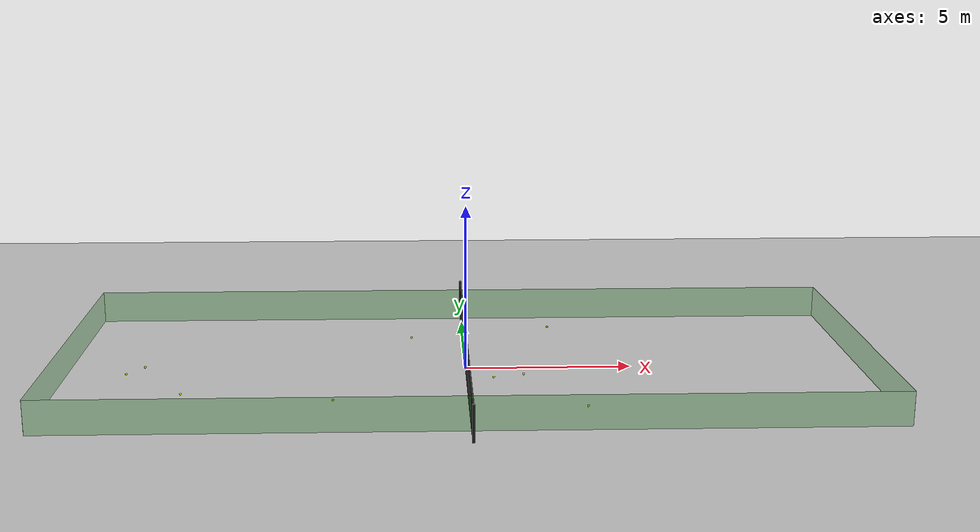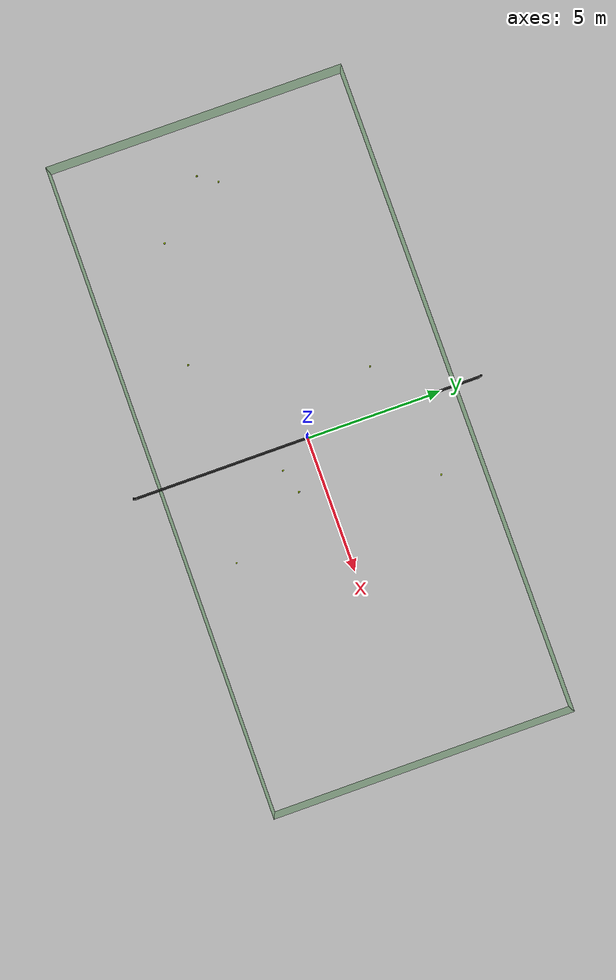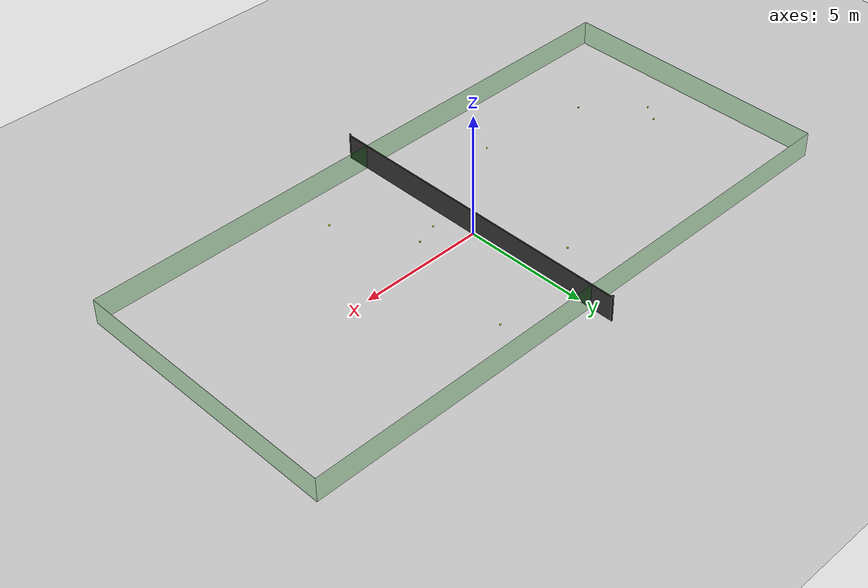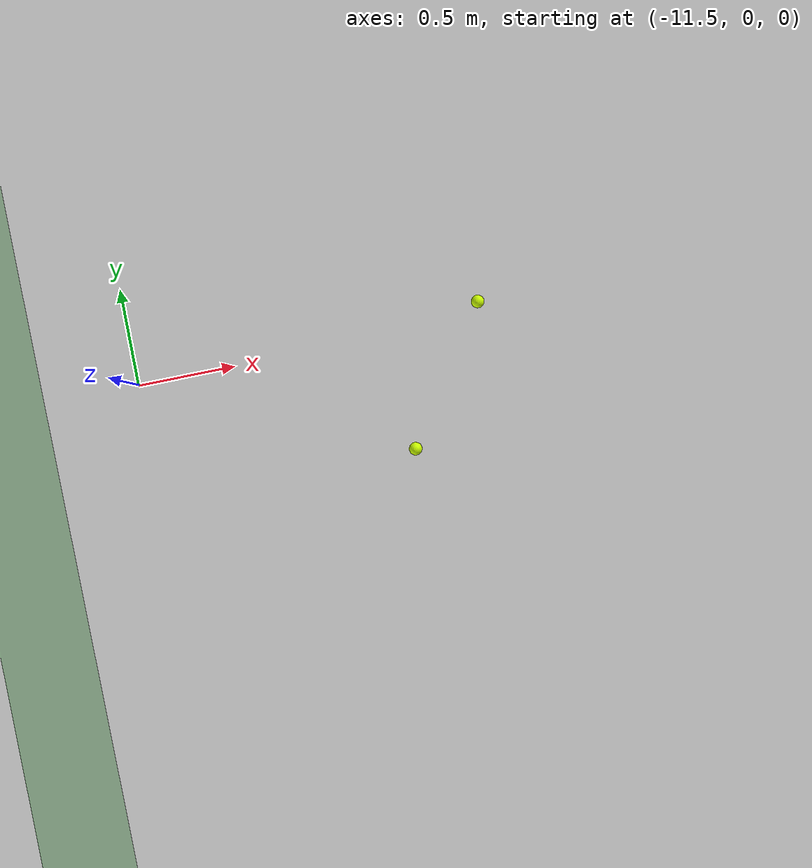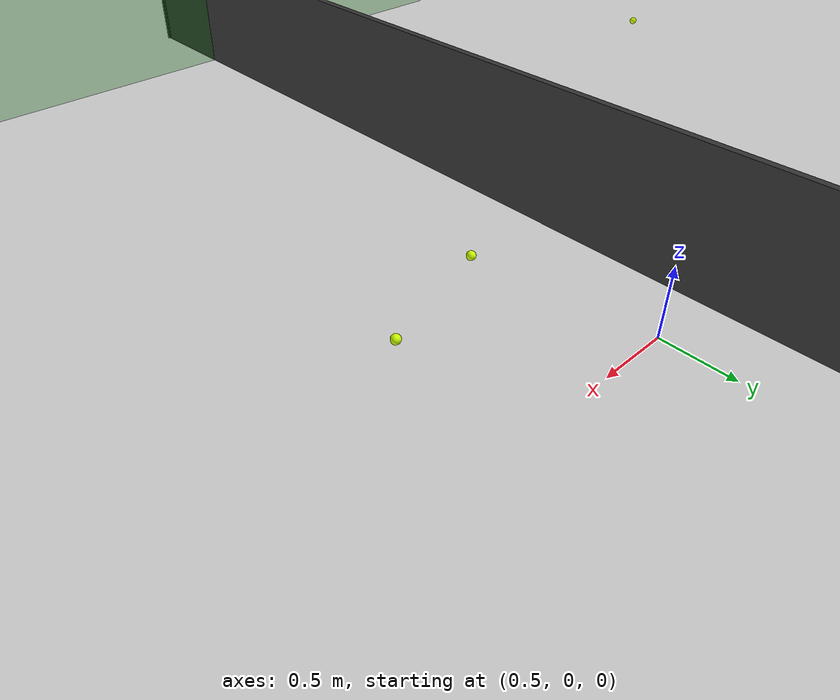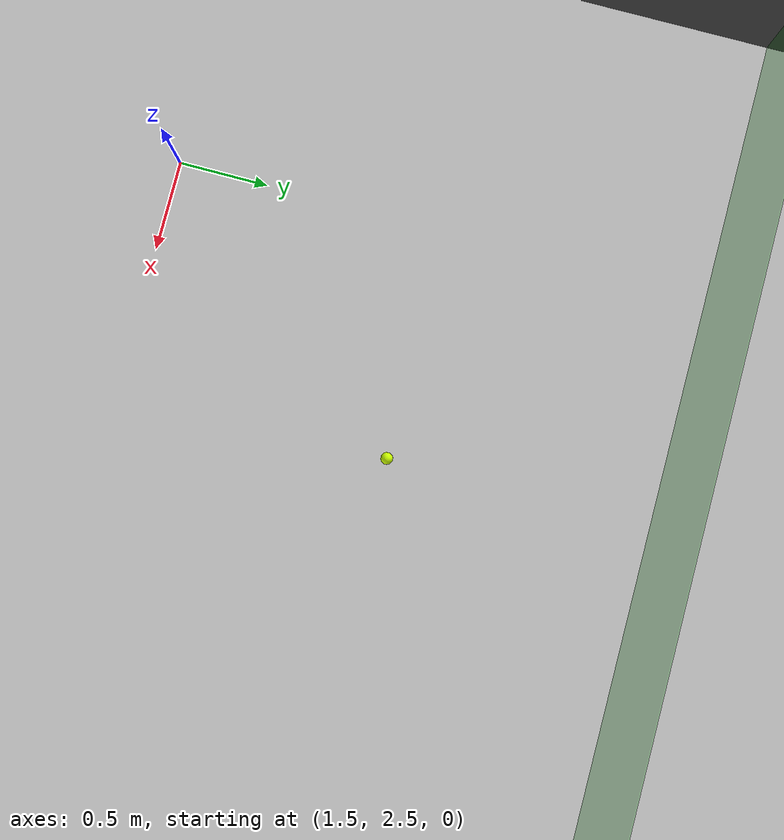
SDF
<?xml version="1.0" ?>
<sdf version="1.6">
  <world name="tennis_court_world">

    <include><uri>model://sun</uri></include>
    <include><uri>model://ground_plane</uri></include>

    <!-- gazebo_ros_state: 提供 /get_entity_state, /set_entity_state 服務，
         撿球實驗腳本用它讀網球位置、判斷有沒有進籃，以及每次 trial 重置球的位置 -->
    <plugin name="gazebo_ros_state" filename="libgazebo_ros_state.so">
      <ros>
        <namespace>/</namespace>
      </ros>
      <update_rate>10.0</update_rate>
    </plugin>

    <model name="court_walls">
      <static>true</static>
      <!-- 開放式網球場：牆只留半透明視覺當邊界參考，沒有碰撞 (真實場地沒有牆) -->
      <link name="walls_link">
        <visual name="front_v"><pose>12 0 0.5 0 0 0</pose><geometry><box><size>0.005 11 1</size></box></geometry><material><ambient>0 0.5 0 0.3</ambient><diffuse>0 0.5 0 0.3</diffuse></material></visual>
        <visual name="back_v"><pose>-12 0 0.5 0 0 0</pose><geometry><box><size>0.005 11 1</size></box></geometry><material><ambient>0 0.5 0 0.3</ambient><diffuse>0 0.5 0 0.3</diffuse></material></visual>
        <visual name="left_v"><pose>0 5.5 0.5 0 0 0</pose><geometry><box><size>24 0.005 1</size></box></geometry><material><ambient>0 0.5 0 0.3</ambient><diffuse>0 0.5 0 0.3</diffuse></material></visual>
        <visual name="right_v"><pose>0 -5.5 0.5 0 0 0</pose><geometry><box><size>24 0.005 1</size></box></geometry><material><ambient>0 0.5 0 0.3</ambient><diffuse>0 0.5 0 0.3</diffuse></material></visual>
      </link>
    </model>

    <!-- 網球網：ITF 規格中央高 0.914 m、網柱高 1.07 m，網柱在雙打邊線外 0.914 m
         (雙打寬 10.97 m -> 網柱在 y=±6.4 m，全長 12.8 m)。深灰色 (視覺不會當成球)，
         有碰撞；1 m 高的實心板會擋住相機看到另一個半場的球，對應現實 YOLO 隔著網子
         辨識不可靠的情況。 -->
    <model name="tennis_net">
      <static>true</static>
      <link name="net_link">
        <collision name="net_c"><pose>0 0 0.5 0 0 0</pose><geometry><box><size>0.05 12.8 1.0</size></box></geometry></collision>
        <visual name="net_v"><pose>0 0 0.5 0 0 0</pose><geometry><box><size>0.05 12.8 1.0</size></box></geometry><material><ambient>0.15 0.15 0.15 1</ambient><diffuse>0.2 0.2 0.2 1</diffuse></material></visual>
        <collision name="post_l_c"><pose>0 6.4 0.535 0 0 0</pose><geometry><cylinder><radius>0.04</radius><length>1.07</length></cylinder></geometry></collision>
        <visual name="post_l_v"><pose>0 6.4 0.535 0 0 0</pose><geometry><cylinder><radius>0.04</radius><length>1.07</length></cylinder></geometry><material><ambient>0.1 0.1 0.1 1</ambient><diffuse>0.1 0.1 0.1 1</diffuse></material></visual>
        <collision name="post_r_c"><pose>0 -6.4 0.535 0 0 0</pose><geometry><cylinder><radius>0.04</radius><length>1.07</length></cylinder></geometry></collision>
        <visual name="post_r_v"><pose>0 -6.4 0.535 0 0 0</pose><geometry><cylinder><radius>0.04</radius><length>1.07</length></cylinder></geometry><material><ambient>0.1 0.1 0.1 1</ambient><diffuse>0.1 0.1 0.1 1</diffuse></material></visual>
      </link>
    </model>

    <model name="ball_1">
      <pose>-3.876 -3.142 0.1 0 0 0</pose>
      <link name="link">
        <inertial>
          <mass>0.027</mass>
          <inertia><ixx>1.7642e-05</ixx><iyy>1.7642e-05</iyy><izz>1.7642e-05</izz></inertia>
        </inertial>
        <velocity_decay><linear>0</linear><angular>0.00107</angular></velocity_decay>
        <collision name="collision">
          <geometry><sphere><radius>0.033</radius></sphere></geometry>
          <surface>
            <friction><ode><mu>1.0</mu><mu2>1.0</mu2></ode></friction>
            <bounce><restitution_coefficient>0.75</restitution_coefficient><threshold>0.01</threshold></bounce>
            <contact><ode><kp>100000.0</kp><kd>1.0</kd><min_depth>0.001</min_depth></ode></contact>
          </surface>
        </collision>
        <visual name="visual">
          <geometry><sphere><radius>0.033</radius></sphere></geometry>
          <material><ambient>0.8 1.0 0.0 1</ambient><diffuse>0.8 1.0 0.0 1</diffuse></material>
        </visual>
      </link>
    </model>
    <model name="ball_2">
      <pose>3.321 -3.848 0.1 0 0 0</pose>
      <link name="link">
        <inertial>
          <mass>0.027</mass>
          <inertia><ixx>1.7642e-05</ixx><iyy>1.7642e-05</iyy><izz>1.7642e-05</izz></inertia>
        </inertial>
        <velocity_decay><linear>0</linear><angular>0.00107</angular></velocity_decay>
        <collision name="collision">
          <geometry><sphere><radius>0.033</radius></sphere></geometry>
          <surface>
            <friction><ode><mu>1.0</mu><mu2>1.0</mu2></ode></friction>
            <bounce><restitution_coefficient>0.75</restitution_coefficient><threshold>0.01</threshold></bounce>
            <contact><ode><kp>100000.0</kp><kd>1.0</kd><min_depth>0.001</min_depth></ode></contact>
          </surface>
        </collision>
        <visual name="visual">
          <geometry><sphere><radius>0.033</radius></sphere></geometry>
          <material><ambient>0.8 1.0 0.0 1</ambient><diffuse>0.8 1.0 0.0 1</diffuse></material>
        </visual>
      </link>
    </model>
    <model name="ball_3">
      <pose>0.789 -1.209 0.1 0 0 0</pose>
      <link name="link">
        <inertial>
          <mass>0.027</mass>
          <inertia><ixx>1.7642e-05</ixx><iyy>1.7642e-05</iyy><izz>1.7642e-05</izz></inertia>
        </inertial>
        <velocity_decay><linear>0</linear><angular>0.00107</angular></velocity_decay>
        <collision name="collision">
          <geometry><sphere><radius>0.033</radius></sphere></geometry>
          <surface>
            <friction><ode><mu>1.0</mu><mu2>1.0</mu2></ode></friction>
            <bounce><restitution_coefficient>0.75</restitution_coefficient><threshold>0.01</threshold></bounce>
            <contact><ode><kp>100000.0</kp><kd>1.0</kd><min_depth>0.001</min_depth></ode></contact>
          </surface>
        </collision>
        <visual name="visual">
          <geometry><sphere><radius>0.033</radius></sphere></geometry>
          <material><ambient>0.8 1.0 0.0 1</ambient><diffuse>0.8 1.0 0.0 1</diffuse></material>
        </visual>
      </link>
    </model>
    <model name="ball_4">
      <pose>-9.724 0.067 0.1 0 0 0</pose>
      <link name="link">
        <inertial>
          <mass>0.027</mass>
          <inertia><ixx>1.7642e-05</ixx><iyy>1.7642e-05</iyy><izz>1.7642e-05</izz></inertia>
        </inertial>
        <velocity_decay><linear>0</linear><angular>0.00107</angular></velocity_decay>
        <collision name="collision">
          <geometry><sphere><radius>0.033</radius></sphere></geometry>
          <surface>
            <friction><ode><mu>1.0</mu><mu2>1.0</mu2></ode></friction>
            <bounce><restitution_coefficient>0.75</restitution_coefficient><threshold>0.01</threshold></bounce>
            <contact><ode><kp>100000.0</kp><kd>1.0</kd><min_depth>0.001</min_depth></ode></contact>
          </surface>
        </collision>
        <visual name="visual">
          <geometry><sphere><radius>0.033</radius></sphere></geometry>
          <material><ambient>0.8 1.0 0.0 1</ambient><diffuse>0.8 1.0 0.0 1</diffuse></material>
        </visual>
      </link>
    </model>
    <model name="ball_5">
      <pose>-10.175 -0.597 0.1 0 0 0</pose>
      <link name="link">
        <inertial>
          <mass>0.027</mass>
          <inertia><ixx>1.7642e-05</ixx><iyy>1.7642e-05</iyy><izz>1.7642e-05</izz></inertia>
        </inertial>
        <velocity_decay><linear>0</linear><angular>0.00107</angular></velocity_decay>
        <collision name="collision">
          <geometry><sphere><radius>0.033</radius></sphere></geometry>
          <surface>
            <friction><ode><mu>1.0</mu><mu2>1.0</mu2></ode></friction>
            <bounce><restitution_coefficient>0.75</restitution_coefficient><threshold>0.01</threshold></bounce>
            <contact><ode><kp>100000.0</kp><kd>1.0</kd><min_depth>0.001</min_depth></ode></contact>
          </surface>
        </collision>
        <visual name="visual">
          <geometry><sphere><radius>0.033</radius></sphere></geometry>
          <material><ambient>0.8 1.0 0.0 1</ambient><diffuse>0.8 1.0 0.0 1</diffuse></material>
        </visual>
      </link>
    </model>
    <model name="ball_7">
      <pose>-1.661 2.942 0.1 0 0 0</pose>
      <link name="link">
        <inertial>
          <mass>0.027</mass>
          <inertia><ixx>1.7642e-05</ixx><iyy>1.7642e-05</iyy><izz>1.7642e-05</izz></inertia>
        </inertial>
        <velocity_decay><linear>0</linear><angular>0.00107</angular></velocity_decay>
        <collision name="collision">
          <geometry><sphere><radius>0.033</radius></sphere></geometry>
          <surface>
            <friction><ode><mu>1.0</mu><mu2>1.0</mu2></ode></friction>
            <bounce><restitution_coefficient>0.75</restitution_coefficient><threshold>0.01</threshold></bounce>
            <contact><ode><kp>100000.0</kp><kd>1.0</kd><min_depth>0.001</min_depth></ode></contact>
          </surface>
        </collision>
        <visual name="visual">
          <geometry><sphere><radius>0.033</radius></sphere></geometry>
          <material><ambient>0.8 1.0 0.0 1</ambient><diffuse>0.8 1.0 0.0 1</diffuse></material>
        </visual>
      </link>
    </model>
    <model name="ball_8">
      <pose>-8.276 -2.491 0.1 0 0 0</pose>
      <link name="link">
        <inertial>
          <mass>0.027</mass>
          <inertia><ixx>1.7642e-05</ixx><iyy>1.7642e-05</iyy><izz>1.7642e-05</izz></inertia>
        </inertial>
        <velocity_decay><linear>0</linear><angular>0.00107</angular></velocity_decay>
        <collision name="collision">
          <geometry><sphere><radius>0.033</radius></sphere></geometry>
          <surface>
            <friction><ode><mu>1.0</mu><mu2>1.0</mu2></ode></friction>
            <bounce><restitution_coefficient>0.75</restitution_coefficient><threshold>0.01</threshold></bounce>
            <contact><ode><kp>100000.0</kp><kd>1.0</kd><min_depth>0.001</min_depth></ode></contact>
          </surface>
        </collision>
        <visual name="visual">
          <geometry><sphere><radius>0.033</radius></sphere></geometry>
          <material><ambient>0.8 1.0 0.0 1</ambient><diffuse>0.8 1.0 0.0 1</diffuse></material>
        </visual>
      </link>
    </model>
    <model name="ball_9">
      <pose>2.804 4.029 0.1 0 0 0</pose>
      <link name="link">
        <inertial>
          <mass>0.027</mass>
          <inertia><ixx>1.7642e-05</ixx><iyy>1.7642e-05</iyy><izz>1.7642e-05</izz></inertia>
        </inertial>
        <velocity_decay><linear>0</linear><angular>0.00107</angular></velocity_decay>
        <collision name="collision">
          <geometry><sphere><radius>0.033</radius></sphere></geometry>
          <surface>
            <friction><ode><mu>1.0</mu><mu2>1.0</mu2></ode></friction>
            <bounce><restitution_coefficient>0.75</restitution_coefficient><threshold>0.01</threshold></bounce>
            <contact><ode><kp>100000.0</kp><kd>1.0</kd><min_depth>0.001</min_depth></ode></contact>
          </surface>
        </collision>
        <visual name="visual">
          <geometry><sphere><radius>0.033</radius></sphere></geometry>
          <material><ambient>0.8 1.0 0.0 1</ambient><diffuse>0.8 1.0 0.0 1</diffuse></material>
        </visual>
      </link>
    </model>
    <model name="ball_10">
      <pose>1.696 -0.93 0.1 0 0 0</pose>
      <link name="link">
        <inertial>
          <mass>0.027</mass>
          <inertia><ixx>1.7642e-05</ixx><iyy>1.7642e-05</iyy><izz>1.7642e-05</izz></inertia>
        </inertial>
        <velocity_decay><linear>0</linear><angular>0.00107</angular></velocity_decay>
        <collision name="collision">
          <geometry><sphere><radius>0.033</radius></sphere></geometry>
          <surface>
            <friction><ode><mu>1.0</mu><mu2>1.0</mu2></ode></friction>
            <bounce><restitution_coefficient>0.75</restitution_coefficient><threshold>0.01</threshold></bounce>
            <contact><ode><kp>100000.0</kp><kd>1.0</kd><min_depth>0.001</min_depth></ode></contact>
          </surface>
        </collision>
        <visual name="visual">
          <geometry><sphere><radius>0.033</radius></sphere></geometry>
          <material><ambient>0.8 1.0 0.0 1</ambient><diffuse>0.8 1.0 0.0 1</diffuse></material>
        </visual>
      </link>
    </model>

  </world>
</sdf>
